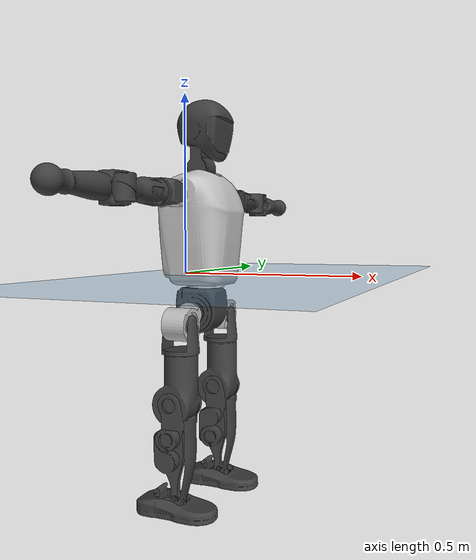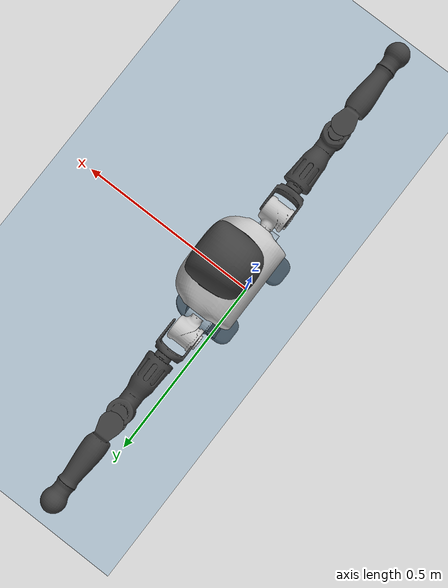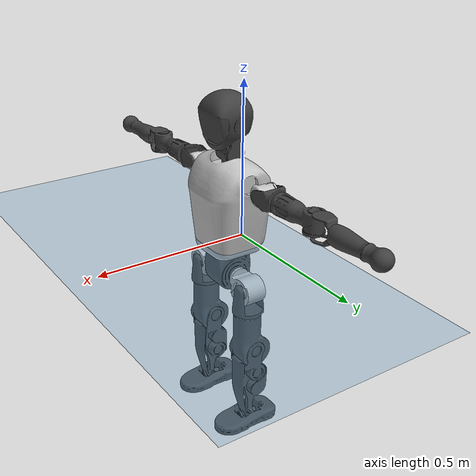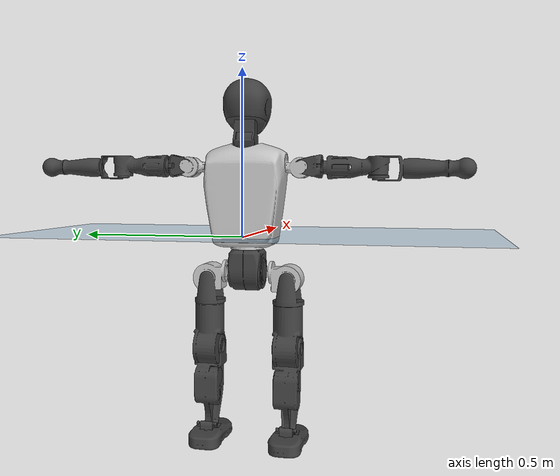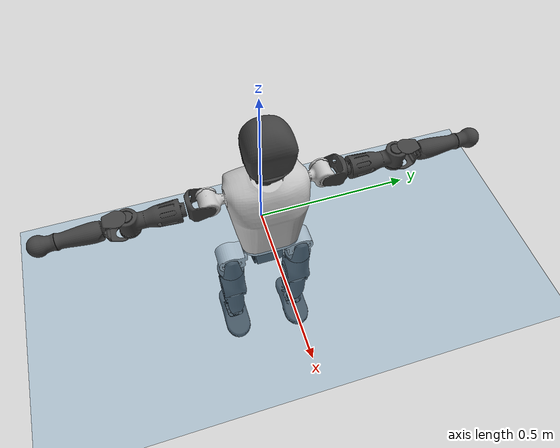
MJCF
<mujoco model="T1">
  <compiler angle="radian" assetdir="assets" balanceinertia="true" inertiafromgeom="false"/>

  <option timestep="0.005" density="1.2" viscosity="2e-05"/>

  <size nkey="1"/>

  <visual>
    <quality shadowsize="8192"/>
    <map shadowclip="0.5"/>
  </visual>

  <default>
    <default class="/">
      <joint armature="0.01" damping="0.01" frictionloss="0.1"/>
      <geom contype="0" conaffinity="0" group="1" solref="-1000 -80"/>
      <site size="0.01 0.005 0.005" group="5"/>
      <general forcelimited="true" biastype="affine" gainprm="25" biasprm="0 -25 -0.6"/>
      <default class="t1">
        <geom rgba="0.25 0.25 0.25 1"/>
        <default class="visual">
          <geom type="mesh" group="2"/>
        </default>
        <default class="collision">
          <geom group="3"/>
        </default>
        <default class="foot">
          <geom size="0.1115 0.05 0.015" type="box" condim="6" group="4" priority="1" solimp="0.015 1 0.015"/>
        </default>
        <default class="reward_collision_sphere">
          <geom group="5" rgba="1 0 0 1"/>
        </default>
      </default>
    </default>
  </default>

  <asset>
    <texture type="skybox" colorspace="auto" name="//unnamed_texture_0" builtin="gradient" rgb1="0.95 0.95 0.95" rgb2="0.95 0.95 0.95" width="100" height="600"/>
    <texture type="2d" colorspace="auto" name="texplane" builtin="checker" rgb1="0.345 0.575 0.748" rgb2="0.345 0.575 0.748" markrgb="1 1 1" width="512" height="512"/>
    <material name="MatPlane" class="/" texture="texplane" texuniform="true" texrepeat="2 2" specular="0.9"/>
    <mesh name="Trunk" class="/" file="Trunk.stl"/>
    <mesh name="H1" class="/" file="H1.stl"/>
    <mesh name="H2" class="/" file="H2.stl"/>
    <mesh name="AL1" class="/" file="AL1.stl"/>
    <mesh name="AL2" class="/" file="AL2.stl"/>
    <mesh name="AL3" class="/" file="AL3.stl"/>
    <mesh name="left_hand_link" class="/" file="left_hand_link.stl"/>
    <mesh name="AR1" class="/" file="AR1.stl"/>
    <mesh name="AR2" class="/" file="AR2.stl"/>
    <mesh name="AR3" class="/" file="AR3.stl"/>
    <mesh name="right_hand_link" class="/" file="right_hand_link.stl"/>
    <mesh name="Waist" class="/" file="Waist.stl"/>
    <mesh name="Hip_Pitch_Left" class="/" file="Hip_Pitch_Left.stl"/>
    <mesh name="Hip_Roll_Left" class="/" file="Hip_Roll_Left.stl"/>
    <mesh name="Hip_Yaw_Left" class="/" file="Hip_Yaw_Left.stl"/>
    <mesh name="Shank_Left" class="/" file="Shank_Left.stl"/>
    <mesh name="Ankle_Cross_Left" class="/" file="Ankle_Cross_Left.stl"/>
    <mesh name="left_foot_link" class="/" file="left_foot_link.stl"/>
    <mesh name="Hip_Pitch_Right" class="/" file="Hip_Pitch_Right.stl"/>
    <mesh name="Hip_Roll_Right" class="/" file="Hip_Roll_Right.stl"/>
    <mesh name="Hip_Yaw_Right" class="/" file="Hip_Yaw_Right.stl"/>
    <mesh name="Shank_Right" class="/" file="Shank_Right.stl"/>
    <mesh name="Ankle_Cross_Right" class="/" file="Ankle_Cross_Right.stl"/>
    <mesh name="right_foot_link" class="/" file="right_foot_link.stl"/>
  </asset>

  <worldbody>
    <geom name="floor" class="/" size="100 100 0.125" type="plane" group="0" material="MatPlane"/>
    <light name="toplight_shadow" class="/" pos="0 0 5" dir="0.0990148 0.0990148 -0.990148" type="directional" ambient="0.04 0.04 0.04" diffuse="0.55 0.55 0.55" specular="0.12 0.12 0.12"/>
    <light name="toplight_fill" class="/" pos="0 0 5" dir="0.0990148 0.0990148 -0.990148" type="directional" castshadow="false" ambient="0.04 0.04 0.04" diffuse="0.3 0.3 0.3" specular="0.08 0.08 0.08"/>
    <body name="trunk" childclass="t1" pos="0.000865347 0.000271983 0.00335865" quat="0.999998 0.00117927 -0.000820525 0.00154449">
      <inertial pos="0.0457246 -0.00131471 0.100076" quat="0.99996 0.000911936 -0.0087682 0.00144928" mass="12.0409" diaginertia="0.0382954 0.191161 0.0414166"/>
      <joint name="//unnamed_joint_0" type="free" armature="0" damping="0" frictionloss="0"/>
      <geom name="//unnamed_geom_1" class="visual" rgba="0.76 0.76 0.76 1" mesh="Trunk"/>
      <geom name="//unnamed_geom_2" class="collision" size="0.0740787 0.0987716 0.148157" pos="0.0502272 0 0.112636" type="box"/>
      <geom name="//unnamed_geom_3" class="reward_collision_sphere" size="0.113587" pos="0.0502272 0 0.0938633"/>
      <geom name="//unnamed_geom_4" class="reward_collision_sphere" size="0.0148157" pos="0.0502272 0.100929 0"/>
      <geom name="//unnamed_geom_5" class="reward_collision_sphere" size="0.0148157" pos="0.0502272 -0.100929 0"/>
      <geom name="//unnamed_geom_6" class="reward_collision_sphere" size="0.0148157" pos="0.0502272 0.127051 0.168954"/>
      <geom name="//unnamed_geom_7" class="reward_collision_sphere" size="0.0148157" pos="0.0502272 -0.127051 0.168954"/>
      <site name="imu" pos="0.0159042 -0.00820224 0.00357031" size="0.00987716"/>
      <camera name="track" pos="0 -2.37479 0" quat="0.707107 0.707107 0 0" mode="trackcom"/>
      <camera name="ego_camera" pos="0.102129 0 0.394226" quat="-0.5 -0.5 0.5 0.5"/>
      <body name="H1" pos="0.0517093 3.53655e-05 0.226959" quat="0.999999 0.000460896 0.00110805 -0.000592458">
        <inertial pos="-0.00229432 -0.000506536 0.0564847" quat="0.762904 -0.0103818 -0.00148564 0.646427" mass="0.442711" diaginertia="0.000103838 0.000528863 0.000112791"/>
        <joint name="AAHead_yaw" pos="0 0 0" axis="0.00216259 -0.00592274 0.99998" range="-1.47331 1.52104" armature="0.0105189" damping="0" frictionloss="0.109193"/>
        <geom name="//unnamed_geom_8" class="visual" mesh="H1"/>
        <body name="H2" pos="-0.0041053 0.00232127 0.0568474" quat="0.999998 -0.000266121 -0.00165488 -0.00085717">
          <inertial pos="0.00638708 0.00310315 0.0935848" quat="0.988435 0.106336 -0.0745542 -0.0783017" mass="0.631716" diaginertia="0.000831327 0.00454014 0.00124723"/>
          <joint name="Head_pitch" pos="0 0 0" axis="-0.00916957 -0.999892 -0.0115208" range="-1.21085 0.284472" armature="0.00876474" damping="0" frictionloss="0.0799115"/>
          <geom name="//unnamed_geom_9" class="visual" mesh="H2"/>
          <geom name="//unnamed_geom_10" class="collision" size="0.0790173" pos="0.0083712 0 0.10325"/>
          <geom name="//unnamed_geom_11" class="reward_collision_sphere" size="0.0888944" pos="0.0167424 0 0.0938633"/>
        </body>
      </body>
      <body name="AL1" pos="0.0451726 0.127544 0.206949" quat="0.999999 0.000130145 0.00164242 -7.57998e-05">
        <inertial pos="0.00321752 0.0513731 -0.00192348" quat="0.504405 0.493904 -0.503261 0.498361" mass="0.507851" diaginertia="0.000575109 0.00284479 0.000207437"/>
        <joint name="Left_Shoulder_Pitch" pos="0 0 0" axis="-0.000430108 1 7.72333e-05" range="-3.33918 1.21764" armature="0.0103008" damping="0.0131735" frictionloss="0.0887348"/>
        <geom name="//unnamed_geom_12" class="visual" rgba="0.76 0.76 0.76 1" mesh="AL1"/>
        <body name="AL2" pos="0.00369025 0.0554039 0.00402822" quat="0.999999 0.000228868 0.000141919 0.00162964">
          <inertial pos="0.00137507 0.0451687 0.00222259" quat="0.48752 0.5181 -0.481169 0.512224" mass="0.151118" diaginertia="0.000158447 0.000805157 0.000131921"/>
          <joint name="Left_Shoulder_Roll" pos="0 0 0" axis="-0.999858 0.0168115 -0.00144657" range="-1.59039 1.69013" armature="0.0111268" damping="0.00794306" frictionloss="0.115089"/>
          <geom name="//unnamed_geom_13" class="visual" mesh="AL2"/>
          <body name="AL3" pos="0.00380235 0.0707463 -0.000917688" quat="0.999999 0.00124184 -0.000452652 -0.000211386">
            <inertial pos="-0.00266415 0.101142 -0.00246793" quat="0.70726 0.706946 -0.00128058 -0.00313892" mass="0.976533" diaginertia="0.00541817 0.0297794 0.00044646"/>
            <joint name="Left_Elbow_Pitch" pos="0 0 0" axis="-0.00651049 -0.999908 0.011926" range="-2.22793 2.28131" armature="0.00874584" damping="0.0130626" frictionloss="0.108404"/>
            <geom name="//unnamed_geom_14" class="visual" mesh="AL3"/>
            <geom name="//unnamed_geom_15" class="collision" size="0.0296315 0.0740787" pos="0 0.0593697 0" quat="0.707105 0.707108 0 0" type="cylinder"/>
            <geom name="//unnamed_geom_16" class="reward_collision_sphere" size="0.0355578"/>
            <body name="left_hand_link" pos="-3.78979e-05 0.177867 -0.00412854" quat="0.999999 0.000114321 -0.000639573 0.000959506">
              <inertial pos="-0.000253297 0.131765 0.000165039" quat="0.706996 0.707217 -0.000487531 -0.000403341" mass="0.292151" diaginertia="0.00333292 0.0182203 0.000148144"/>
              <joint name="Left_Elbow_Yaw" pos="0 0 0" axis="-0.00835164 -0.00683066 0.999942" range="-2.39527 0.00538973" armature="0.0112333" damping="0.0133881" frictionloss="0.100695"/>
              <geom name="//unnamed_geom_17" class="visual" mesh="left_hand_link"/>
              <geom name="//unnamed_geom_18" class="collision" size="0.0296315 0.0864251" pos="0 0.154361 0" quat="0.707105 0.707108 0 0" type="cylinder"/>
              <geom name="//unnamed_geom_19" class="reward_collision_sphere" size="0.0493858"/>
              <geom name="//unnamed_geom_20" class="reward_collision_sphere" size="0.0345701" pos="0 0.130613 0"/>
              <geom name="//unnamed_geom_21" class="reward_collision_sphere" size="0.0345701" pos="0 0.25529 0"/>
            </body>
          </body>
        </body>
      </body>
      <body name="AR1" pos="0.04747 -0.122348 0.204046" quat="0.999999 0.000421958 -0.000539537 -0.000813517">
        <inertial pos="-0.00057942 -0.0553308 0.00257384" quat="0.501283 0.49349 -0.502676 0.502493" mass="0.49428" diaginertia="0.000555443 0.00293418 0.00020872"/>
        <joint name="Right_Shoulder_Pitch" pos="0 0 0" axis="-0.00218742 -0.999818 -0.0189528" stiffness="0.00630022" range="-1.23438 3.31498" armature="0.0088895" damping="0.00884785" frictionloss="0.107459"/>
        <geom name="//unnamed_geom_22" class="visual" rgba="0.76 0.76 0.76 1" mesh="AR1"/>
        <body name="AR2" pos="0.000762609 -0.0522927 0.00392218" quat="1 0.000208874 -8.9389e-05 2.75194e-05">
          <inertial pos="0.00100947 -0.0458038 0.000151295" quat="0.511721 0.488058 -0.511629 0.488033" mass="0.157613" diaginertia="0.000155499 0.000788834 0.000131648"/>
          <joint name="Right_Shoulder_Roll" pos="0 0 0" axis="-0.999994 -0.00335998 0.000681268" range="-1.68429 1.55484" armature="0.00954567" damping="0.0146721" frictionloss="0.0881803"/>
          <geom name="//unnamed_geom_23" class="visual" mesh="AR2"/>
          <body name="AR3" pos="0.0032906 -0.0732037 -0.00292934" quat="0.999999 -0.00103899 0.000818504 -0.000109221">
            <inertial pos="0.00380758 -0.101088 0.00287407" quat="0.707596 0.706615 -0.00155693 0.000419153" mass="0.963801" diaginertia="0.00538928 0.031463 0.000453491"/>
            <joint name="Right_Elbow_Pitch" pos="0 0 0" axis="0.00513854 0.999977 -0.00436482" stiffness="0.0180494" range="-2.26035 2.23927" armature="0.0104174" damping="0.00365388" frictionloss="0.0905842"/>
            <geom name="//unnamed_geom_24" class="visual" mesh="AR3"/>
            <geom name="//unnamed_geom_25" class="collision" size="0.0296315 0.0740787" pos="0 -0.0593697 0" quat="0.707105 0.707108 0 0" type="cylinder"/>
            <geom name="//unnamed_geom_26" class="reward_collision_sphere" size="0.0355578"/>
            <body name="right_hand_link" pos="-0.000841726 -0.173061 -0.00400814" quat="1 -0.000346698 0.000390738 -0.000166358">
              <inertial pos="0.000327719 -0.130863 -0.00173929" quat="0.704549 0.709546 0.010654 -0.00647109" mass="0.307628" diaginertia="0.00337857 0.0183191 0.000156567"/>
              <joint name="Right_Elbow_Yaw" pos="0 0 0" axis="-0.00676846 -0.000300541 0.999977" range="-0.0332901 2.44417" armature="0.00877378" damping="0.000766903" frictionloss="0.104081"/>
              <geom name="//unnamed_geom_27" class="visual" mesh="right_hand_link"/>
              <geom name="//unnamed_geom_28" class="collision" size="0.0296315 0.0864251" pos="0 -0.154361 0" quat="0.707105 0.707108 0 0" type="cylinder"/>
              <geom name="//unnamed_geom_29" class="reward_collision_sphere" size="0.0493858"/>
              <geom name="//unnamed_geom_30" class="reward_collision_sphere" size="0.0345701" pos="0 -0.130613 0"/>
              <geom name="//unnamed_geom_31" class="reward_collision_sphere" size="0.0345701" pos="0 -0.25529 0"/>
            </body>
          </body>
        </body>
      </body>
      <body name="Waist" pos="0.0501287 -0.00447664 -0.109416" quat="1 0.000198042 0.000135182 -0.000479232">
        <inertial pos="0.0038001 -0.00053594 0.00913001" quat="0.983508 0.000514518 -0.180844 0.00252885" mass="2.57484" diaginertia="0.00226003 0.0124435 0.00353206"/>
        <joint name="Waist" pos="0 0 0" axis="0.00900212 0.0106839 0.999902" range="-1.55705 1.59783" armature="0.00965643" damping="0.0180531" frictionloss="0.10252"/>
        <geom name="//unnamed_geom_32" class="visual" mesh="Waist"/>
        <body name="Hip_Pitch_Left" pos="0.00308152 0.121398 -0.00263044" quat="1 -0.000177309 0.000214253 0.000103136">
          <inertial pos="0.000653452 -0.00890911 -0.0129103" quat="0.974886 0.221509 0.0181867 0.0141535" mass="0.94846" diaginertia="0.000746103 0.00347692 0.00094017"/>
          <joint name="Left_Hip_Pitch" pos="0 0 0" axis="0.00248179 0.999997 -2.07289e-05" stiffness="0.00237769" range="-1.83073 1.5665" armature="0.00963734" damping="0.0117026" frictionloss="0.107495"/>
          <geom name="//unnamed_geom_33" class="visual" rgba="0.76 0.76 0.76 1" mesh="Hip_Pitch_Left"/>
          <body name="Hip_Roll_Left" pos="0.00202601 -0.00089068 -0.0215971" quat="1 -0.000448173 0.000285365 -0.000173328">
            <inertial pos="0.0011527 -0.00264089 -0.0500025" quat="0.710084 -0.0135702 -0.00730864 0.703948" mass="0.362383" diaginertia="0.000690184 0.00359743 0.000372433"/>
            <joint name="Left_Hip_Roll" pos="0 0 0" axis="-0.99995 -0.00552014 0.00831394" stiffness="0.00548876" range="-1.57618 0.210099" armature="0.00992628" damping="0.00838199" frictionloss="0.100411"/>
            <geom name="//unnamed_geom_34" class="visual" mesh="Hip_Roll_Left"/>
            <geom name="//unnamed_geom_35" class="reward_collision_sphere" size="0.0543244"/>
            <body name="Hip_Yaw_Left" pos="0.00153403 0.0021537 -0.0818304" quat="1 -0.000217583 0.000199212 -3.13916e-05">
              <inertial pos="-0.00307237 -0.000507363 -0.0808328" quat="0.691811 -0.0309818 -0.040719 0.720264" mass="2.07874" diaginertia="0.00988656 0.0612519 0.00186"/>
              <joint name="Left_Hip_Yaw" pos="0 0 0" axis="0.00420304 -0.0023134 -0.999988" stiffness="0.0193911" range="-0.995836 0.990636" armature="0.0100707" damping="0" frictionloss="0.110139"/>
              <geom name="//unnamed_geom_36" class="visual" mesh="Hip_Yaw_Left"/>
              <geom name="//unnamed_geom_37" class="collision" size="0.0493858 0.0790173" type="cylinder"/>
              <body name="Shank_Left" pos="-0.0116021 -0.00278136 -0.128439" quat="0.999998 0.00166959 -0.000701573 0.000714438">
                <inertial pos="-0.00333647 0.00507814 -0.119317" quat="0.996773 0.00763089 -0.027934 0.0748708" mass="1.70719" diaginertia="0.0142725 0.0818217 0.00138837"/>
                <joint name="Left_Knee_Pitch" pos="0 0 0" axis="-0.00748407 0.999945 0.00730449" range="-0.0535787 2.34721" armature="0.00976729" damping="0" frictionloss="0.112422"/>
                <geom name="//unnamed_geom_38" class="visual" mesh="Shank_Left"/>
                <geom name="//unnamed_geom_39" class="collision" size="0.0493858 0.0740787" pos="0 0 -0.112636" type="cylinder"/>
                <geom name="//unnamed_geom_40" class="reward_collision_sphere" size="0.0642015"/>
                <body name="Ankle_Cross_Left" pos="0.00374791 -0.00231977 -0.262806" quat="1 -4.44454e-05 4.31757e-06 4.40038e-05">
                  <inertial pos="-0.00124714 -0.00101709 -0.00685265" quat="0.438651 0.566447 0.544765 0.435837" mass="0.0747274" diaginertia="1.18968e-05 6.10379e-05 8.42704e-06"/>
                  <joint name="Left_Ankle_Pitch" pos="0 0 0" axis="1.34352e-05 1 -0.000102393" range="-0.893732 0.392638" armature="0.00938859" damping="0" frictionloss="0.101497"/>
                  <geom name="//unnamed_geom_41" class="visual" mesh="Ankle_Cross_Left"/>
                  <body name="left_foot_link" pos="-0.00102434 0.000355556 -0.0110174" quat="1 2.05734e-06 -2.1285e-05 -7.19869e-05">
                    <inertial pos="-9.60619e-05 -0.000270493 -0.0130399" quat="-0.00117957 0.620945 0.000844615 0.783853" mass="0.638386" diaginertia="0.00108377 0.00539338 0.00152552"/>
                    <joint name="Left_Ankle_Roll" pos="0 0 0" axis="-0.999981 0.00599468 -0.00116089" stiffness="0.00417976" range="-0.439751 0.475852" armature="0.00967428" damping="0" frictionloss="0.100143"/>
                    <geom name="//unnamed_geom_42" class="visual" mesh="left_foot_link"/>
                    <geom name="left_foot" class="foot" size="0.0988717 0.043609 0.0154984" pos="0.0083712 0 -0.0140795"/>
                    <geom name="//unnamed_geom_44" class="reward_collision_sphere" size="0.0513612" pos="0.0083712 0 -0.0140795"/>
                    <geom name="//unnamed_geom_45" class="reward_collision_sphere" size="0.0296315" pos="0.0795264 -0.0273101 -0.0140795"/>
                    <geom name="//unnamed_geom_46" class="reward_collision_sphere" size="0.0296315" pos="-0.0585984 -0.0273101 -0.0140795"/>
                    <site name="left_foot" class="foot" pos="0.0083712 0 -0.0140795" size="0.00987716"/>
                  </body>
                </body>
              </body>
            </body>
          </body>
        </body>
        <body name="Hip_Pitch_Right" pos="0.000239152 -0.126224 -0.00236341" quat="0.999999 -0.00149128 0.000446882 -0.000187077">
          <inertial pos="-0.000140905 0.0129576 -0.0140572" quat="0.975258 -0.220841 0.00891805 -0.00463813" mass="1.01473" diaginertia="0.0007843 0.00355908 0.000954585"/>
          <joint name="Right_Hip_Pitch" pos="0 0 0" axis="0.00390647 -0.999992 0.000840625" range="-1.56056 1.8396" armature="0.00959925" damping="0.0124579" frictionloss="0.0803983"/>
          <geom name="//unnamed_geom_47" class="visual" rgba="0.76 0.76 0.76 1" mesh="Hip_Pitch_Right"/>
          <body name="Hip_Roll_Right" pos="0.00220742 -0.00148045 -0.0196751" quat="1 -0.000118236 0.000354342 0.000395098">
            <inertial pos="-0.00126127 -0.000550974 -0.0486023" quat="0.707655 -0.00635794 -0.00743122 0.70649" mass="0.370062" diaginertia="0.00075934 0.0036741 0.000385557"/>
            <joint name="Right_Hip_Roll" pos="0 0 0" axis="-0.999947 -0.00762973 -0.00696578" stiffness="0.000483461" range="-0.196444 1.52181" armature="0.00989715" damping="0" frictionloss="0.0914228"/>
            <geom name="//unnamed_geom_48" class="visual" mesh="Hip_Roll_Right"/>
            <geom name="//unnamed_geom_49" class="reward_collision_sphere" size="0.0543244"/>
            <body name="Hip_Yaw_Right" pos="-0.00162426 0.0012432 -0.0788231" quat="1 -0.000773928 -0.000156983 -0.00030123">
              <inertial pos="-0.00407612 -0.00457225 -0.0814271" quat="0.714724 -0.0306317 -0.0339504 0.69791" mass="2.14272" diaginertia="0.0108252 0.0649586 0.00194029"/>
              <joint name="Right_Hip_Yaw" pos="0 0 0" axis="-0.00866422 0.0112322 -0.999899" range="-0.969763 1.015" armature="0.00983671" damping="0" frictionloss="0.098635"/>
              <geom name="//unnamed_geom_50" class="visual" mesh="Hip_Yaw_Right"/>
              <geom name="//unnamed_geom_51" class="collision" size="0.0493858 0.0790173" type="cylinder"/>
              <body name="Shank_Right" pos="-0.0149321 -0.00185638 -0.12985" quat="1 1.47043e-05 1.97242e-05 -7.65545e-05">
                <inertial pos="-3.05678e-05 0.00246905 -0.115351" quat="0.998705 0.0105131 -0.0392447 -0.0306299" mass="1.80328" diaginertia="0.0146463 0.0856283 0.00151229"/>
                <joint name="Right_Knee_Pitch" pos="0 0 0" axis="0.00343335 -0.999991 -0.00245318" stiffness="0.00768119" range="-2.33815 0.0464744" armature="0.00948858" damping="0.00659978" frictionloss="0.0995575"/>
                <geom name="//unnamed_geom_52" class="visual" mesh="Shank_Right"/>
                <geom name="//unnamed_geom_53" class="collision" size="0.0493858 0.0740787" pos="0 0 -0.112636" type="cylinder"/>
                <geom name="//unnamed_geom_54" class="reward_collision_sphere" size="0.0642015"/>
                <body name="Ankle_Cross_Right" pos="-0.000994252 -0.00179276 -0.260919" quat="0.999999 -0.000622359 -0.000892842 -0.000447745">
                  <inertial pos="-0.00364635 -0.000968653 -0.00889437" quat="0.44351 0.549624 0.5548 0.439784" mass="0.0673441" diaginertia="1.14213e-05 5.71132e-05 8.00901e-06"/>
                  <joint name="Right_Ankle_Pitch" pos="0 0 0" axis="0.00110044 -0.999997 -0.00212192" range="-0.450532 0.876457" armature="0.00873168" damping="0.0159213" frictionloss="0.0945727"/>
                  <geom name="//unnamed_geom_55" class="visual" mesh="Ankle_Cross_Right"/>
                  <body name="right_foot_link" pos="-0.0033537 -0.00308626 -0.011614" quat="1 -3.28337e-05 0.00012751 4.0924e-05">
                    <inertial pos="0.000918704 -0.00205441 -0.0126619" quat="-0.00365872 0.613414 0.00528459 0.789736" mass="0.638418" diaginertia="0.00111512 0.00558993 0.00153815"/>
                    <joint name="Right_Ankle_Roll" pos="0 0 0" axis="-1 -0.000176807 -0.000458724" range="-0.492851 0.440717" armature="0.01094" damping="0" frictionloss="0.0743171"/>
                    <geom name="//unnamed_geom_56" class="visual" mesh="right_foot_link"/>
                    <geom name="right_foot" class="foot" size="0.100489 0.0565103 0.0122313" pos="0.0083712 0 -0.0140795"/>
                    <geom name="//unnamed_geom_58" class="reward_collision_sphere" size="0.0395086"/>
                    <geom name="//unnamed_geom_59" class="reward_collision_sphere" size="0.0296315" pos="0.0083712 0 -0.0140795"/>
                    <geom name="//unnamed_geom_60" class="reward_collision_sphere" size="0.0296315" pos="0.0795264 0.0273101 -0.0140795"/>
                    <geom name="//unnamed_geom_61" class="reward_collision_sphere" size="0.0296315" pos="-0.0585984 0.0273101 -0.0140795"/>
                    <site name="right_foot" class="foot" pos="0.0083712 0 -0.0140795" size="0.00987716"/>
                  </body>
                </body>
              </body>
            </body>
          </body>
        </body>
      </body>
    </body>
  </worldbody>

  <contact>
    <pair class="/" geom1="floor" geom2="left_foot" name="//unnamed_contact_0"/>
    <pair class="/" geom1="floor" geom2="right_foot" name="//unnamed_contact_1"/>
  </contact>

  <actuator>
    <general name="AAHead_yaw" class="/" joint="AAHead_yaw" forcerange="-6.85868 6.85868" gainprm="24.0017" biasprm="0 -24.0017 -0.588026"/>
    <general name="Head_pitch" class="/" joint="Head_pitch" forcerange="-7.3546 7.3546" gainprm="24.0017" biasprm="0 -24.0017 -0.588026"/>
    <general name="Left_Shoulder_Pitch" class="/" joint="Left_Shoulder_Pitch" forcerange="-16.4822 16.4822" gainprm="24.0017" biasprm="0 -24.0017 -0.588026"/>
    <general name="Left_Shoulder_Roll" class="/" joint="Left_Shoulder_Roll" forcerange="-19.3234 19.3234" gainprm="24.0017" biasprm="0 -24.0017 -0.588026"/>
    <general name="Left_Elbow_Pitch" class="/" joint="Left_Elbow_Pitch" forcerange="-19.1483 19.1483" gainprm="24.0017" biasprm="0 -24.0017 -0.588026"/>
    <general name="Left_Elbow_Yaw" class="/" joint="Left_Elbow_Yaw" forcerange="-17.9818 17.9818" gainprm="24.0017" biasprm="0 -24.0017 -0.588026"/>
    <general name="Right_Shoulder_Pitch" class="/" joint="Right_Shoulder_Pitch" forcerange="-19.8117 19.8117" gainprm="24.0017" biasprm="0 -24.0017 -0.588026"/>
    <general name="Right_Shoulder_Roll" class="/" joint="Right_Shoulder_Roll" forcerange="-18.2581 18.2581" gainprm="24.0017" biasprm="0 -24.0017 -0.588026"/>
    <general name="Right_Elbow_Pitch" class="/" joint="Right_Elbow_Pitch" forcerange="-17.5971 17.5971" gainprm="24.0017" biasprm="0 -24.0017 -0.588026"/>
    <general name="Right_Elbow_Yaw" class="/" joint="Right_Elbow_Yaw" forcerange="-18.1137 18.1137" gainprm="24.0017" biasprm="0 -24.0017 -0.588026"/>
    <general name="Waist" class="/" joint="Waist" forcerange="-30.0151 30.0151" gainprm="24.0017" biasprm="0 -24.0017 -0.588026"/>
    <general name="Left_Hip_Pitch" class="/" joint="Left_Hip_Pitch" forcerange="-43.3229 43.3229" gainprm="24.0017" biasprm="0 -24.0017 -0.588026"/>
    <general name="Left_Hip_Roll" class="/" joint="Left_Hip_Roll" forcerange="-25.4739 25.4739" gainprm="24.0017" biasprm="0 -24.0017 -0.588026"/>
    <general name="Left_Hip_Yaw" class="/" joint="Left_Hip_Yaw" forcerange="-29.0859 29.0859" gainprm="24.0017" biasprm="0 -24.0017 -0.588026"/>
    <general name="Left_Knee_Pitch" class="/" joint="Left_Knee_Pitch" forcerange="-51.9525 51.9525" gainprm="24.0017" biasprm="0 -24.0017 -0.588026"/>
    <general name="Left_Ankle_Pitch" class="/" joint="Left_Ankle_Pitch" forcerange="-19.263 19.263" gainprm="24.0017" biasprm="0 -24.0017 -0.588026"/>
    <general name="Left_Ankle_Roll" class="/" joint="Left_Ankle_Roll" forcerange="-14.2219 14.2219" gainprm="24.0017" biasprm="0 -24.0017 -0.588026"/>
    <general name="Right_Hip_Pitch" class="/" joint="Right_Hip_Pitch" forcerange="-48.3751 48.3751" gainprm="24.0017" biasprm="0 -24.0017 -0.588026"/>
    <general name="Right_Hip_Roll" class="/" joint="Right_Hip_Roll" forcerange="-27.5885 27.5885" gainprm="24.0017" biasprm="0 -24.0017 -0.588026"/>
    <general name="Right_Hip_Yaw" class="/" joint="Right_Hip_Yaw" forcerange="-30.0675 30.0675" gainprm="24.0017" biasprm="0 -24.0017 -0.588026"/>
    <general name="Right_Knee_Pitch" class="/" joint="Right_Knee_Pitch" forcerange="-56.6519 56.6519" gainprm="24.0017" biasprm="0 -24.0017 -0.588026"/>
    <general name="Right_Ankle_Pitch" class="/" joint="Right_Ankle_Pitch" forcerange="-19.2073 19.2073" gainprm="24.0017" biasprm="0 -24.0017 -0.588026"/>
    <general name="Right_Ankle_Roll" class="/" joint="Right_Ankle_Roll" forcerange="-14.233 14.233" gainprm="24.0017" biasprm="0 -24.0017 -0.588026"/>
  </actuator>

  <sensor>
    <gyro site="imu" name="imu_angular_velocity"/>
    <velocimeter site="imu" name="imu_linear_velocity"/>
    <framelinvel objtype="site" objname="left_foot" name="left_foot_global_linear_velocity"/>
    <framelinvel objtype="site" objname="right_foot" name="right_foot_global_linear_velocity"/>
  </sensor>

  <keyframe>
    <key name="home" qpos="0 0 0.6385 1 0 0 0 0 0 0 1.4 0 -0.4 0 -1.4 0 0.4 0 -0.4 0 0 0.8 -0.4 0 0.4 0 0 -0.8 0.4 0"/>
  </keyframe>
</mujoco>
